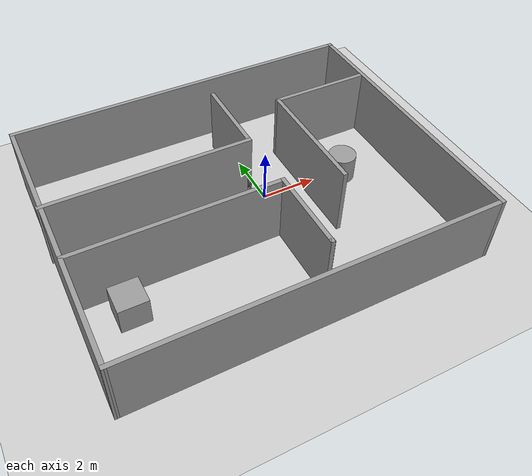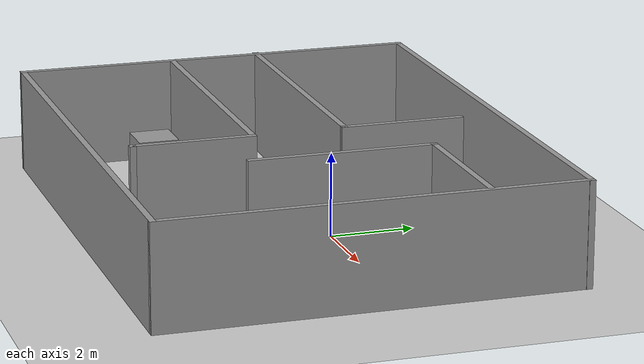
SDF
<sdf version="1.7">
 <world name="default">
  <light name="sun" type="directional">
   <pose>0 0 10 0 -0 0</pose>
   <diffuse>0.8 0.8 0.8 1</diffuse>
   <specular>0.2 0.2 0.2 1</specular>
   <attenuation>
    <range>1000</range>
    <constant>0.9</constant>
    <linear>0.01</linear>
    <quadratic>0.001</quadratic>
   </attenuation>
   <direction>-0.5 0.1 -0.9</direction>
   <spot><inner_angle>0</inner_angle><outer_angle>0</outer_angle><falloff>0</falloff></spot>
  </light>
  <model name="ground_plane">
   <static>1</static>
   <link name="link">
    <collision name="collision">
     <geometry><plane><normal>0 0 1</normal><size>100 100</size></plane></geometry>
     <surface><friction><ode><mu>100</mu><mu2>50</mu2></ode></friction></surface>
    </collision>
    <visual name="visual">
     <cast_shadows>0</cast_shadows>
     <geometry><plane><normal>0 0 1</normal><size>100 100</size></plane></geometry>
     <material>
      <script><uri>file://media/materials/scripts/gazebo.material</uri><name>Gazebo/Grey</name></script>
     </material>
    </visual>
   </link>
  </model>
  <gravity>0 0 -9.8</gravity>
  <magnetic_field>6e-06 2.3e-05 -4.2e-05</magnetic_field>
  <atmosphere type="adiabatic"/>
  <physics type="ode">
   <max_step_size>0.001</max_step_size>
   <real_time_factor>1</real_time_factor>
   <real_time_update_rate>1000</real_time_update_rate>
  </physics>
  <scene><ambient>0.4 0.4 0.4 1</ambient><background>0.7 0.7 0.7 1</background><shadows>1</shadows></scene>
  <audio><device>default</device></audio>
  <spherical_coordinates>
   <surface_model>EARTH_WGS84</surface_model>
   <latitude_deg>0</latitude_deg>
   <longitude_deg>0</longitude_deg>
   <elevation>0</elevation>
   <heading_deg>0</heading_deg>
  </spherical_coordinates>
  <model name="room">
   <pose>-1.17205 -0.674469 0 0 -0 0</pose>
   <link name="Wall_12">
    <collision name="Wall_12_Collision">
     <geometry><box><size>12.75 0.15 2.5</size></box></geometry>
     <pose>0 0 1.25 0 -0 0</pose>
    </collision>
    <visual name="Wall_12_Visual">
     <pose>0 0 1.25 0 -0 0</pose>
     <geometry><box><size>12.75 0.15 2.5</size></box></geometry>
     <material>
      <script><uri>file://media/materials/scripts/gazebo.material</uri><name>Gazebo/Grey</name></script>
      <ambient>1 1 1 1</ambient>
     </material>
     <meta><layer>0</layer></meta>
    </visual>
    <pose>0.021995 -4.925 0 0 -0 0</pose>
   </link>
   <link name="Wall_13">
    <collision name="Wall_13_Collision">
     <geometry><box><size>10 0.15 2.5</size></box></geometry>
     <pose>0 0 1.25 0 -0 0</pose>
    </collision>
    <visual name="Wall_13_Visual">
     <pose>0 0 1.25 0 -0 0</pose>
     <geometry><box><size>10 0.15 2.5</size></box></geometry>
     <material>
      <script><uri>file://media/materials/scripts/gazebo.material</uri><name>Gazebo/Grey</name></script>
      <ambient>1 1 1 1</ambient>
     </material>
     <meta><layer>0</layer></meta>
    </visual>
    <pose>6.322 0 0 0 -0 1.5708</pose>
   </link>
   <link name="Wall_14">
    <collision name="Wall_14_Collision">
     <geometry><box><size>0.16 0.15 2.5</size></box></geometry>
     <pose>0 0 1.25 0 -0 0</pose>
    </collision>
    <visual name="Wall_14_Visual">
     <pose>0 0 1.25 0 -0 0</pose>
     <geometry><box><size>0.16 0.15 2.5</size></box></geometry>
     <material>
      <script><uri>file://media/materials/scripts/gazebo.material</uri><name>Gazebo/Grey</name></script>
      <ambient>1 1 1 1</ambient>
     </material>
     <meta><layer>0</layer></meta>
    </visual>
    <pose>6.327 4.925 0 0 -0 0</pose>
   </link>
   <link name="Wall_15">
    <collision name="Wall_15_Collision">
     <geometry><box><size>12.75 0.15 2.5</size></box></geometry>
     <pose>0 0 1.25 0 -0 0</pose>
    </collision>
    <visual name="Wall_15_Visual">
     <pose>0 0 1.25 0 -0 0</pose>
     <geometry><box><size>12.75 0.15 2.5</size></box></geometry>
     <material>
      <script><uri>file://media/materials/scripts/gazebo.material</uri><name>Gazebo/Grey</name></script>
      <ambient>1 1 1 1</ambient>
     </material>
     <meta><layer>0</layer></meta>
    </visual>
    <pose>0.031995 4.925 0 0 -0 3.14159</pose>
   </link>
   <link name="Wall_16">
    <collision name="Wall_16_Collision">
     <geometry><box><size>10 0.15 2.5</size></box></geometry>
     <pose>0 0 1.25 0 -0 0</pose>
    </collision>
    <visual name="Wall_16_Visual">
     <pose>0 0 1.25 0 -0 0</pose>
     <geometry><box><size>10 0.15 2.5</size></box></geometry>
     <material>
      <script><uri>file://media/materials/scripts/gazebo.material</uri><name>Gazebo/Grey</name></script>
      <ambient>1 1 1 1</ambient>
     </material>
     <meta><layer>0</layer></meta>
    </visual>
    <pose>-6.273 0 0 0 -0 -1.57181</pose>
   </link>
   <link name="Wall_19">
    <collision name="Wall_19_Collision">
     <geometry><box><size>7.25 0.15 2.5</size></box></geometry>
     <pose>0 0 1.25 0 -0 0</pose>
    </collision>
    <visual name="Wall_19_Visual">
     <pose>0 0 1.25 0 -0 0</pose>
     <geometry><box><size>7.25 0.15 2.5</size></box></geometry>
     <material>
      <script><uri>file://media/materials/scripts/gazebo.material</uri><name>Gazebo/Grey</name></script>
      <ambient>1 1 1 1</ambient>
     </material>
     <meta><layer>0</layer></meta>
    </visual>
    <pose>-2.70188 -1.1051 0 0 -0 0</pose>
   </link>
   <link name="Wall_20">
    <collision name="Wall_20_Collision">
     <geometry><box><size>3 0.15 2.5</size></box></geometry>
     <pose>0 0 1.25 0 -0 0</pose>
    </collision>
    <visual name="Wall_20_Visual">
     <pose>0 0 1.25 0 -0 0</pose>
     <geometry><box><size>3 0.15 2.5</size></box></geometry>
     <material>
      <script><uri>file://media/materials/scripts/gazebo.material</uri><name>Gazebo/Grey</name></script>
      <ambient>1 1 1 1</ambient>
     </material>
     <meta><layer>0</layer></meta>
    </visual>
    <pose>0.848118 -2.5301 0 0 -0 -1.5708</pose>
   </link>
   <link name="Wall_21">
    <collision name="Wall_21_Collision">
     <geometry><box><size>0.16 0.15 2.5</size></box></geometry>
     <pose>0 0 1.25 0 -0 0</pose>
    </collision>
    <visual name="Wall_21_Visual">
     <pose>0 0 1.25 0 -0 0</pose>
     <geometry><box><size>0.16 0.15 2.5</size></box></geometry>
     <material>
      <script><uri>file://media/materials/scripts/gazebo.material</uri><name>Gazebo/Grey</name></script>
      <ambient>1 1 1 1</ambient>
     </material>
     <meta><layer>0</layer></meta>
    </visual>
    <pose>0.853118 -3.9551 0 0 -0 0</pose>
   </link>
   <link name="Wall_23">
    <collision name="Wall_23_Collision">
     <geometry><box><size>7.25 0.15 2.5</size></box></geometry>
     <pose>0 0 1.25 0 -0 0</pose>
    </collision>
    <visual name="Wall_23_Visual">
     <pose>0 0 1.25 0 -0 0</pose>
     <geometry><box><size>7.25 0.15 2.5</size></box></geometry>
     <material>
      <script><uri>file://media/materials/scripts/gazebo.material</uri><name>Gazebo/Grey</name></script>
      <ambient>1 1 1 1</ambient>
     </material>
     <meta><layer>0</layer></meta>
    </visual>
    <pose>-2.782 1.11432 0 0 -0 0</pose>
   </link>
   <link name="Wall_24">
    <collision name="Wall_24_Collision">
     <geometry><box><size>3 0.15 2.5</size></box></geometry>
     <pose>0 0 1.25 0 -0 0</pose>
    </collision>
    <visual name="Wall_24_Visual">
     <pose>0 0 1.25 0 -0 0</pose>
     <geometry><box><size>3 0.15 2.5</size></box></geometry>
     <material>
      <script><uri>file://media/materials/scripts/gazebo.material</uri><name>Gazebo/Grey</name></script>
      <ambient>1 1 1 1</ambient>
     </material>
     <meta><layer>0</layer></meta>
    </visual>
    <pose>0.768005 2.53932 0 0 -0 1.5708</pose>
   </link>
   <link name="Wall_26">
    <collision name="Wall_26_Collision">
     <geometry><box><size>3.75 0.15 2.5</size></box></geometry>
     <pose>0 0 1.25 0 -0 0</pose>
    </collision>
    <visual name="Wall_26_Visual">
     <pose>0 0 1.25 0 -0 0</pose>
     <geometry><box><size>3.75 0.15 2.5</size></box></geometry>
     <material>
      <script><uri>file://media/materials/scripts/gazebo.material</uri><name>Gazebo/Grey</name></script>
      <ambient>1 1 1 1</ambient>
     </material>
     <meta><layer>0</layer></meta>
    </visual>
    <pose>4.51332 2.61846 0 0 -0 3.14159</pose>
   </link>
   <link name="Wall_27">
    <collision name="Wall_27_Collision">
     <geometry><box><size>4.5 0.15 2.5</size></box></geometry>
     <pose>0 0 1.25 0 -0 0</pose>
    </collision>
    <visual name="Wall_27_Visual">
     <pose>0 0 1.25 0 -0 0</pose>
     <geometry><box><size>4.5 0.15 2.5</size></box></geometry>
     <material>
      <script><uri>file://media/materials/scripts/gazebo.material</uri><name>Gazebo/Grey</name></script>
      <ambient>1 1 1 1</ambient>
     </material>
     <meta><layer>0</layer></meta>
    </visual>
    <pose>2.71332 0.443461 0 0 -0 -1.5708</pose>
   </link>
   <static>1</static>
  </model>
  <model name="unit_box">
   <pose>-5.96288 -2.6669 0.499995 -1e-05 -0 0</pose>
   <link name="link">
    <inertial>
     <mass>1</mass>
     <inertia>
      <ixx>0.166667</ixx>
      <ixy>0</ixy>
      <ixz>0</ixz>
      <iyy>0.166667</iyy>
      <iyz>0</iyz>
      <izz>0.166667</izz>
     </inertia>
    </inertial>
    <collision name="collision"><geometry><box><size>1 1 1</size></box></geometry></collision>
    <visual name="visual">
     <geometry><box><size>1 1 1</size></box></geometry>
     <material>
      <script><name>Gazebo/Grey</name><uri>file://media/materials/scripts/gazebo.material</uri></script>
     </material>
    </visual>
   </link>
  </model>
  <model name="unit_cylinder">
   <pose>3.06725 -0.200081 0.499997 3e-06 4e-06 -0</pose>
   <link name="link">
    <inertial>
     <mass>1</mass>
     <inertia><ixx>0.145833</ixx><ixy>0</ixy><ixz>0</ixz><iyy>0.145833</iyy><iyz>0</iyz><izz>0.125</izz></inertia>
    </inertial>
    <collision name="collision">
     <geometry><cylinder><radius>0.5</radius><length>1</length></cylinder></geometry>
    </collision>
    <visual name="visual">
     <geometry><cylinder><radius>0.5</radius><length>1</length></cylinder></geometry>
     <material>
      <script><name>Gazebo/Grey</name><uri>file://media/materials/scripts/gazebo.material</uri></script>
     </material>
    </visual>
   </link>
  </model>
 </world>
</sdf>
